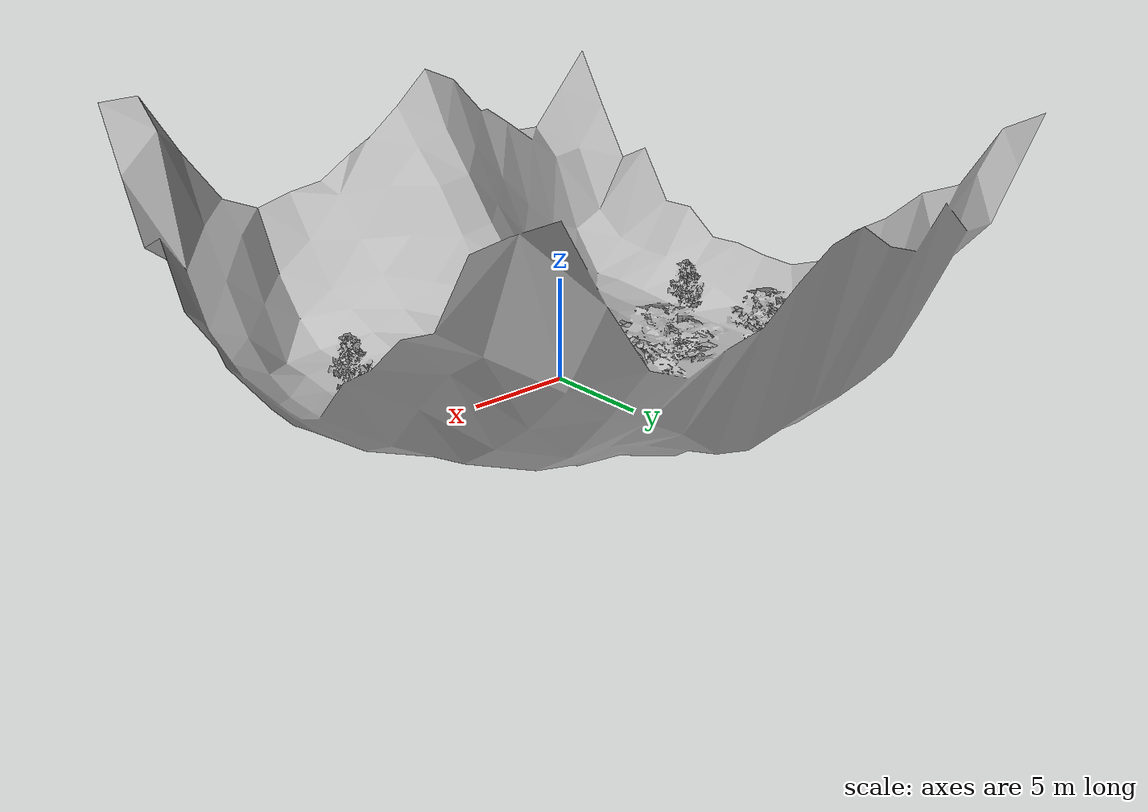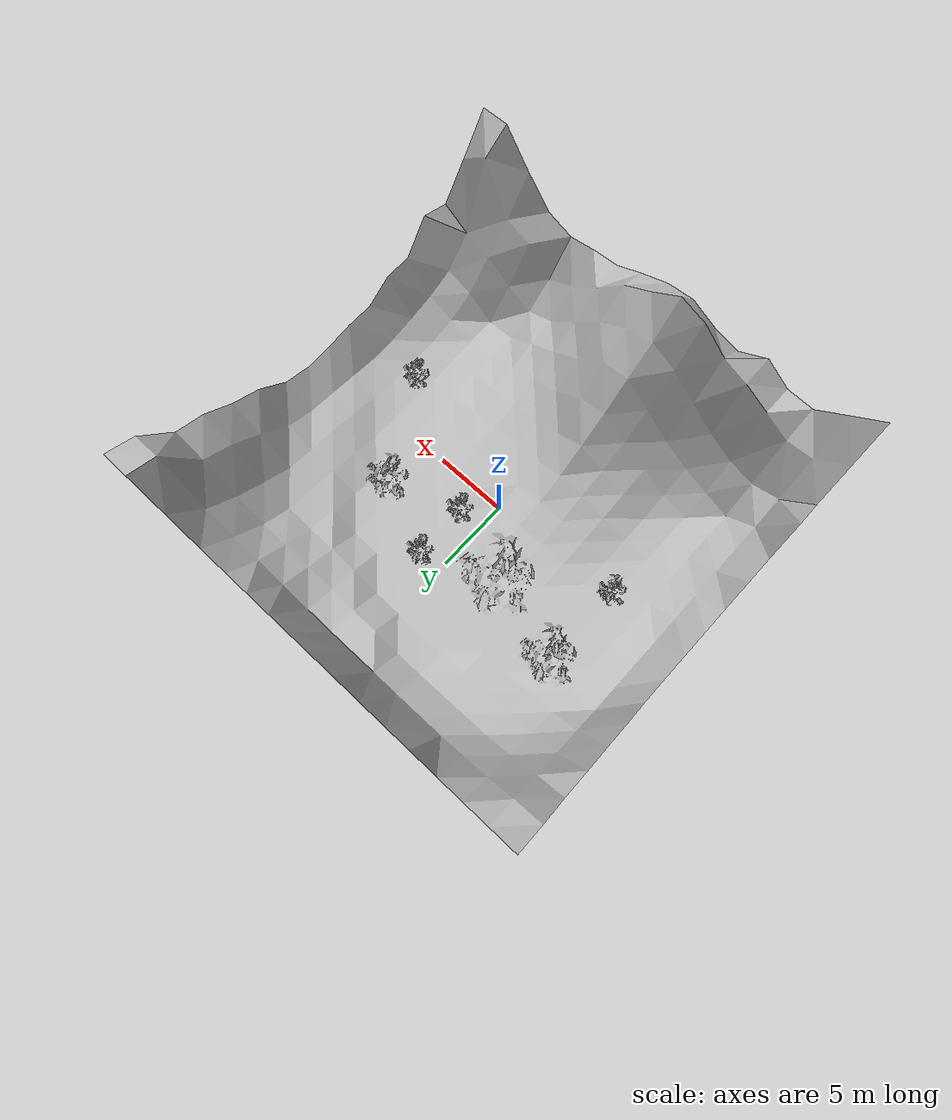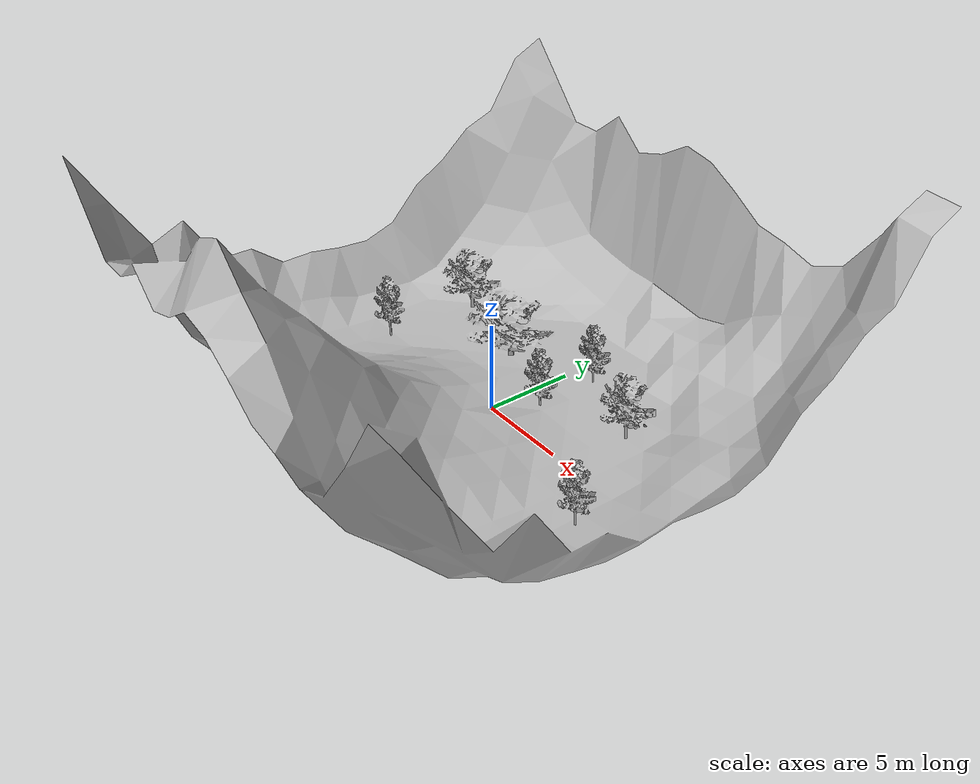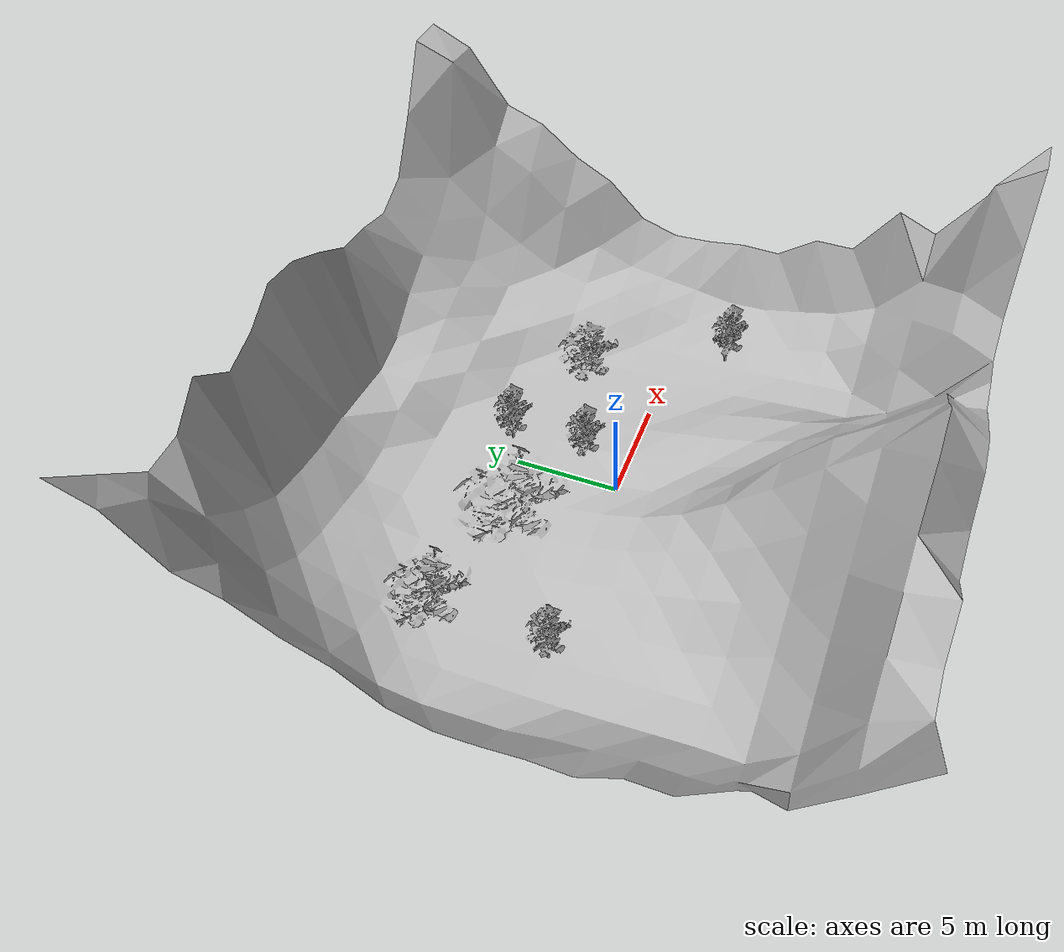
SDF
<?xml version="1.0"?>
<sdf version='1.6'>
  <world name='outdoor'>
    <scene>
      <ambient>0.2 0.2 0.2 1</ambient>
      <shadows>1</shadows>
      <grid>0</grid>
    </scene>
    <gravity>0 0 -9.81</gravity>
    <light name='sun' type='directional'>
      <cast_shadows>1</cast_shadows>
      <pose frame=''>0 0 100 0 -0 0</pose>
      <diffuse>0.8 0.8 0.8 1</diffuse>
      <specular>0.9 0.9 0.9 1</specular>
      <attenuation>
        <range>1000</range>
        <constant>0.1</constant>
        <linear>0.01</linear>
        <quadratic>0.001</quadratic>
      </attenuation>
      <direction>0.2 0.2 -0.9</direction>
    </light>
    <model name="terrain">
		<static>true</static>
		<link name="terrain_link">
			<pose>0 0 0 0 0 0</pose>
			<collision name="terrain_collision">
				<geometry>
					<mesh>
						<uri>file://outdoor.dae</uri>
						<scale>1 1 1</scale>
					</mesh>
				</geometry>
			</collision>
			<visual name="terrain_visual">
				<geometry>
					<mesh>
						<uri>file://outdoor.dae</uri>
						<scale>1 1 1</scale>
					</mesh>
				</geometry>
				<cast_shadows>false</cast_shadows>
			</visual>
		</link>
	</model>
  </world>
</sdf>
